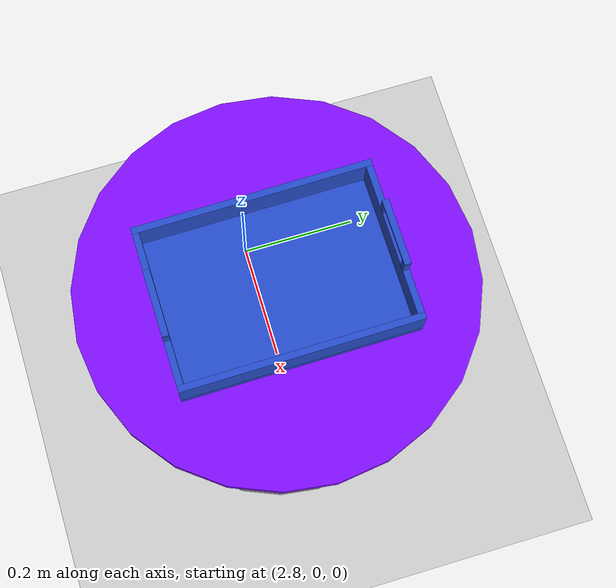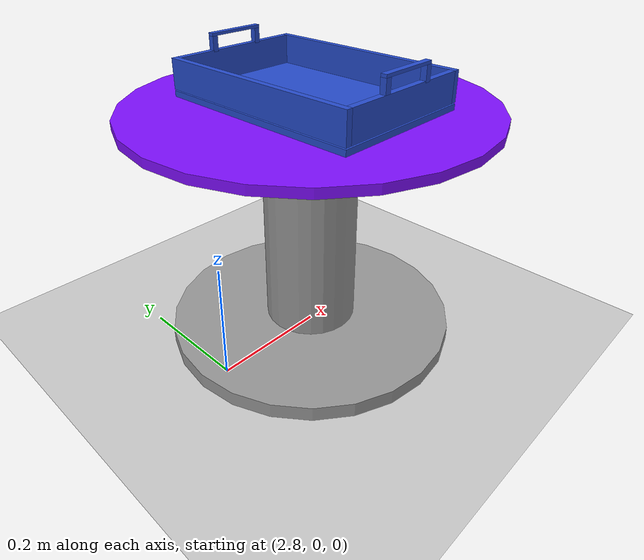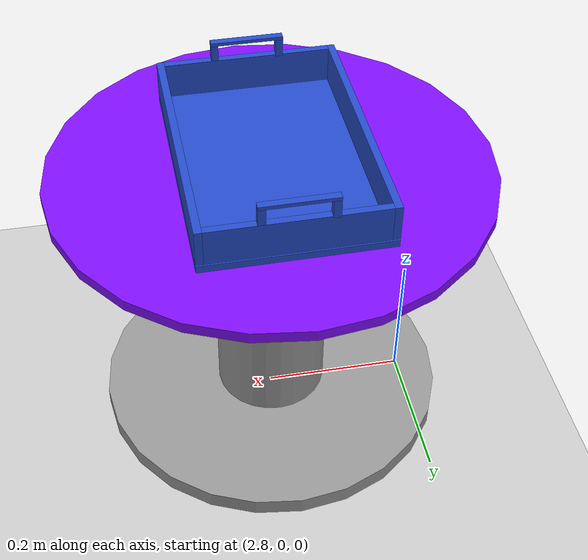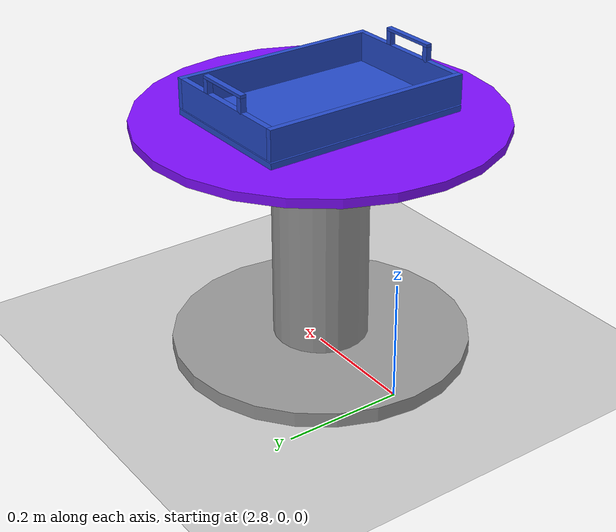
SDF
<sdf version="1.6">
 <world name="default">
  <light name="sun" type="directional">
   <pose>0 0 10 0 -0 0</pose>
   <diffuse>0.8 0.8 0.8 1</diffuse>
   <specular>0.1 0.1 0.1 1</specular>
   <attenuation>
    <range>1000</range>
    <constant>0.9</constant>
    <linear>0.01</linear>
    <quadratic>0.001</quadratic>
   </attenuation>
   <direction>-0.5 0.5 -1</direction>
  </light>
  <model name="ground_plane">
   <static>1</static>
   <link name="link">
    <collision name="collision">
     <geometry><plane><normal>0 0 1</normal><size>100 100</size></plane></geometry>
     <surface><friction><ode><mu>100</mu><mu2>50</mu2></ode></friction></surface>
    </collision>
    <visual name="visual">
     <cast_shadows>0</cast_shadows>
     <geometry><plane><normal>0 0 1</normal><size>100 100</size></plane></geometry>
     <material>
      <script><uri>file://media/materials/scripts/gazebo.material</uri><name>Gazebo/Grey</name></script>
     </material>
    </visual>
   </link>
  </model>
  <gravity>0 0 -9.8</gravity>
  <magnetic_field>6e-06 2.3e-05 -4.2e-05</magnetic_field>
  <atmosphere type="adiabatic"/>
  <physics name="default_physics" default="0" type="ode">
   <max_step_size>0.001</max_step_size>
   <real_time_factor>1</real_time_factor>
   <real_time_update_rate>1000</real_time_update_rate>
  </physics>
  <scene><ambient>0.4 0.4 0.4 1</ambient><background>0.7 0.7 0.7 1</background><shadows>1</shadows></scene>
  <spherical_coordinates>
   <surface_model>EARTH_WGS84</surface_model>
   <latitude_deg>0</latitude_deg>
   <longitude_deg>0</longitude_deg>
   <elevation>0</elevation>
   <heading_deg>0</heading_deg>
  </spherical_coordinates>
  <model name="table_round_low">
   <link name="link_0">
    <pose>0 -0 -0.258333 0 -0 0</pose>
    <inertial>
     <mass>1</mass>
     <inertia><ixx>0.145833</ixx><ixy>0</ixy><ixz>0</ixz><iyy>0.145833</iyy><iyz>0</iyz><izz>0.125</izz></inertia>
    </inertial>
    <visual name="visual">
     <geometry><cylinder><radius>0.25</radius><length>0.025</length></cylinder></geometry>
     <material>
      <lighting>1</lighting>
      <script><uri>file://media/materials/scripts/gazebo.material</uri><name>Gazebo/Grey</name></script>
      <shader type="pixel"><normal_map>__default__</normal_map></shader>
      <ambient>0.3 0.3 0.3 1</ambient>
      <diffuse>0.7 0.7 0.7 1</diffuse>
      <specular>0.01 0.01 0.01 1</specular>
      <emissive>0 0 0 1</emissive>
     </material>
    </visual>
    <collision name="collision">
     <geometry><cylinder><radius>0.25</radius><length>0.025</length></cylinder></geometry>
     <surface>
      <friction>
       <ode><mu>1</mu><mu2>1</mu2><fdir1>0 0 0</fdir1><slip1>0</slip1><slip2>0</slip2></ode>
       <torsional>
        <coefficient>1</coefficient>
        <patch_radius>0</patch_radius>
        <surface_radius>0</surface_radius>
        <use_patch_radius>1</use_patch_radius>
        <ode><slip>0</slip></ode>
       </torsional>
      </friction>
      <bounce><restitution_coefficient>0</restitution_coefficient><threshold>1e+06</threshold></bounce>
      <contact>
       <collide_without_contact>0</collide_without_contact>
       <collide_without_contact_bitmask>1</collide_without_contact_bitmask>
       <collide_bitmask>1</collide_bitmask>
       <ode>
        <soft_cfm>0</soft_cfm>
        <soft_erp>0.2</soft_erp>
        <kp>1e+13</kp>
        <kd>1</kd>
        <max_vel>0.01</max_vel>
        <min_depth>0</min_depth>
       </ode>
       <bullet>
        <split_impulse>1</split_impulse>
        <split_impulse_penetration_threshold>-0.01</split_impulse_penetration_threshold>
        <soft_cfm>0</soft_cfm>
        <soft_erp>0.2</soft_erp>
        <kp>1e+13</kp>
        <kd>1</kd>
       </bullet>
      </contact>
     </surface>
    </collision>
   </link>
   <link name="link_1">
    <pose>-0 0 -0.065014 0 -0 0</pose>
    <inertial>
     <mass>0.761996</mass>
     <inertia>
      <ixx>0.0104367</ixx>
      <ixy>0</ixy>
      <ixz>0</ixz>
      <iyy>0.0104367</iyy>
      <iyz>0</iyz>
      <izz>0.00243839</izz>
     </inertia>
    </inertial>
    <visual name="visual">
     <geometry><cylinder><radius>0.08</radius><length>0.380997</length></cylinder></geometry>
     <material>
      <lighting>1</lighting>
      <script><uri>file://media/materials/scripts/gazebo.material</uri><name>Gazebo/Grey</name></script>
      <shader type="pixel"><normal_map>__default__</normal_map></shader>
      <ambient>0.3 0.3 0.3 1</ambient>
      <diffuse>0.7 0.7 0.7 1</diffuse>
      <specular>0.01 0.01 0.01 1</specular>
      <emissive>0 0 0 1</emissive>
     </material>
    </visual>
    <collision name="collision">
     <geometry><cylinder><radius>0.08</radius><length>0.380997</length></cylinder></geometry>
     <surface>
      <friction>
       <ode><mu>1</mu><mu2>1</mu2><fdir1>0 0 0</fdir1><slip1>0</slip1><slip2>0</slip2></ode>
       <torsional>
        <coefficient>1</coefficient>
        <patch_radius>0</patch_radius>
        <surface_radius>0</surface_radius>
        <use_patch_radius>1</use_patch_radius>
        <ode><slip>0</slip></ode>
       </torsional>
      </friction>
      <bounce><restitution_coefficient>0</restitution_coefficient><threshold>1e+06</threshold></bounce>
      <contact>
       <collide_without_contact>0</collide_without_contact>
       <collide_without_contact_bitmask>1</collide_without_contact_bitmask>
       <collide_bitmask>1</collide_bitmask>
       <ode>
        <soft_cfm>0</soft_cfm>
        <soft_erp>0.2</soft_erp>
        <kp>1e+13</kp>
        <kd>1</kd>
        <max_vel>0.01</max_vel>
        <min_depth>0</min_depth>
       </ode>
       <bullet>
        <split_impulse>1</split_impulse>
        <split_impulse_penetration_threshold>-0.01</split_impulse_penetration_threshold>
        <soft_cfm>0</soft_cfm>
        <soft_erp>0.2</soft_erp>
        <kp>1e+13</kp>
        <kd>1</kd>
       </bullet>
      </contact>
     </surface>
    </collision>
   </link>
   <link name="link_2">
    <pose>-0 0 0.14037 0 -0 0</pose>
    <inertial>
     <mass>1</mass>
     <inertia><ixx>0.145833</ixx><ixy>0</ixy><ixz>0</ixz><iyy>0.145833</iyy><iyz>0</iyz><izz>0.125</izz></inertia>
    </inertial>
    <visual name="visual">
     <geometry><cylinder><radius>0.3</radius><length>0.015</length></cylinder></geometry>
     <material>
      <lighting>1</lighting>
      <script><uri>file://media/materials/scripts/gazebo.material</uri><name>Gazebo/Grey</name></script>
      <shader type="pixel"><normal_map>__default__</normal_map></shader>
      <ambient>1 1 1 1</ambient>
      <diffuse>0.5 0.054 1 1</diffuse>
      <specular>0.01 0 0.01 1</specular>
      <emissive>0.7 0.6 0.1 1</emissive>
     </material>
    </visual>
    <collision name="collision">
     <geometry><cylinder><radius>0.3</radius><length>0.015</length></cylinder></geometry>
     <surface>
      <friction>
       <ode><mu>1</mu><mu2>1</mu2><fdir1>0 0 0</fdir1><slip1>0</slip1><slip2>0</slip2></ode>
       <torsional>
        <coefficient>1</coefficient>
        <patch_radius>0</patch_radius>
        <surface_radius>0</surface_radius>
        <use_patch_radius>1</use_patch_radius>
        <ode><slip>0</slip></ode>
       </torsional>
      </friction>
      <bounce><restitution_coefficient>0</restitution_coefficient><threshold>1e+06</threshold></bounce>
      <contact>
       <collide_without_contact>0</collide_without_contact>
       <collide_without_contact_bitmask>1</collide_without_contact_bitmask>
       <collide_bitmask>1</collide_bitmask>
       <ode>
        <soft_cfm>0</soft_cfm>
        <soft_erp>0.2</soft_erp>
        <kp>1e+13</kp>
        <kd>1</kd>
        <max_vel>0.01</max_vel>
        <min_depth>0</min_depth>
       </ode>
       <bullet>
        <split_impulse>1</split_impulse>
        <split_impulse_penetration_threshold>-0.01</split_impulse_penetration_threshold>
        <soft_cfm>0</soft_cfm>
        <soft_erp>0.2</soft_erp>
        <kp>1e+13</kp>
        <kd>1</kd>
       </bullet>
      </contact>
     </surface>
    </collision>
   </link>
   <joint name="link_0_JOINT_0" type="fixed">
    <parent>link_0</parent>
    <child>link_1</child>
    <physics>
     <ode><limit><cfm>0</cfm><erp>0.2</erp></limit><suspension><cfm>0</cfm><erp>0.2</erp></suspension></ode>
    </physics>
   </joint>
   <joint name="link_1_JOINT_1" type="fixed">
    <parent>link_1</parent>
    <child>link_2</child>
    <physics>
     <ode><limit><cfm>0</cfm><erp>0.2</erp></limit><suspension><cfm>0</cfm><erp>0.2</erp></suspension></ode>
    </physics>
   </joint>
   <static>0</static>
   <pose>3.00002 -2.6e-05 0.270833 -1e-06 -0 1e-05</pose>
  </model>
  <model name="tray2">
   <link name="link_0">
    <pose>-0 -0 -0.051818 0 -0 0</pose>
    <inertial>
     <mass>0.1</mass>
     <inertia>
      <ixx>0.00075</ixx>
      <ixy>0</ixy>
      <ixz>0</ixz>
      <iyy>0.000333</iyy>
      <iyz>0</iyz>
      <izz>0.001083</izz>
     </inertia>
    </inertial>
    <visual name="visual">
     <geometry><box><size>0.36 0.25 0.01</size></box></geometry>
     <material>
      <lighting>1</lighting>
      <script><uri>file://media/materials/scripts/gazebo.material</uri><name>Gazebo/Blue</name></script>
      <shader type="pixel"><normal_map>__default__</normal_map></shader>
      <ambient>0 0 0.3 1</ambient>
      <diffuse>0 0 0.7 1</diffuse>
      <specular>0 0 0.3 1</specular>
      <emissive>0 0 0.2 1</emissive>
     </material>
    </visual>
    <collision name="collision">
     <geometry><box><size>0.36 0.25 0.01</size></box></geometry>
     <surface>
      <friction>
       <ode><mu>1</mu><mu2>1</mu2><fdir1>0 0 0</fdir1><slip1>0</slip1><slip2>0</slip2></ode>
       <torsional>
        <coefficient>1</coefficient>
        <patch_radius>0</patch_radius>
        <surface_radius>0</surface_radius>
        <use_patch_radius>1</use_patch_radius>
        <ode><slip>0</slip></ode>
       </torsional>
      </friction>
      <bounce><restitution_coefficient>0</restitution_coefficient><threshold>1e+06</threshold></bounce>
      <contact>
       <collide_without_contact>0</collide_without_contact>
       <collide_without_contact_bitmask>1</collide_without_contact_bitmask>
       <collide_bitmask>1</collide_bitmask>
       <ode>
        <soft_cfm>0</soft_cfm>
        <soft_erp>0.2</soft_erp>
        <kp>1e+13</kp>
        <kd>1</kd>
        <max_vel>0.01</max_vel>
        <min_depth>0</min_depth>
       </ode>
       <bullet>
        <split_impulse>1</split_impulse>
        <split_impulse_penetration_threshold>-0.01</split_impulse_penetration_threshold>
        <soft_cfm>0</soft_cfm>
        <soft_erp>0.2</soft_erp>
        <kp>1e+13</kp>
        <kd>1</kd>
       </bullet>
      </contact>
     </surface>
    </collision>
   </link>
   <link name="link_1">
    <pose>-0 -0.12 -0.02 1.5708 -0 0</pose>
    <inertial>
     <mass>0.025</mass>
     <inertia>
      <ixx>0.000188</ixx>
      <ixy>5e-06</ixy>
      <ixz>0</ixz>
      <iyy>0.166667</iyy>
      <iyz>0</iyz>
      <izz>0.000193</izz>
     </inertia>
    </inertial>
    <visual name="visual">
     <geometry><box><size>0.36 0.05 0.01</size></box></geometry>
     <material>
      <lighting>1</lighting>
      <script><uri>file://media/materials/scripts/gazebo.material</uri><name>Gazebo/Blue</name></script>
      <shader type="pixel"><normal_map>__default__</normal_map></shader>
      <ambient>0 0 0.3 1</ambient>
      <diffuse>0 0 0.7 1</diffuse>
      <specular>0 0 0.3 1</specular>
      <emissive>0 0 0.2 1</emissive>
     </material>
    </visual>
    <collision name="collision">
     <geometry><box><size>0.36 0.05 0.01</size></box></geometry>
     <surface>
      <friction>
       <ode><mu>1</mu><mu2>1</mu2><fdir1>0 0 0</fdir1><slip1>0</slip1><slip2>0</slip2></ode>
       <torsional>
        <coefficient>1</coefficient>
        <patch_radius>0</patch_radius>
        <surface_radius>0</surface_radius>
        <use_patch_radius>1</use_patch_radius>
        <ode><slip>0</slip></ode>
       </torsional>
      </friction>
      <bounce><restitution_coefficient>0</restitution_coefficient><threshold>1e+06</threshold></bounce>
      <contact>
       <collide_without_contact>0</collide_without_contact>
       <collide_without_contact_bitmask>1</collide_without_contact_bitmask>
       <collide_bitmask>1</collide_bitmask>
       <ode>
        <soft_cfm>0</soft_cfm>
        <soft_erp>0.2</soft_erp>
        <kp>1e+13</kp>
        <kd>1</kd>
        <max_vel>0.01</max_vel>
        <min_depth>0</min_depth>
       </ode>
       <bullet>
        <split_impulse>1</split_impulse>
        <split_impulse_penetration_threshold>-0.01</split_impulse_penetration_threshold>
        <soft_cfm>0</soft_cfm>
        <soft_erp>0.2</soft_erp>
        <kp>1e+13</kp>
        <kd>1</kd>
       </bullet>
      </contact>
     </surface>
    </collision>
   </link>
   <link name="link_1_clone">
    <pose>0 0.12 -0.02 1.5708 -0 0</pose>
    <inertial>
     <mass>0.025</mass>
     <inertia>
      <ixx>0.000188</ixx>
      <ixy>5e-06</ixy>
      <ixz>0</ixz>
      <iyy>0.166667</iyy>
      <iyz>0</iyz>
      <izz>0.000193</izz>
     </inertia>
    </inertial>
    <visual name="visual">
     <geometry><box><size>0.36 0.05 0.01</size></box></geometry>
     <material>
      <lighting>1</lighting>
      <script><uri>file://media/materials/scripts/gazebo.material</uri><name>Gazebo/Blue</name></script>
      <shader type="pixel"><normal_map>__default__</normal_map></shader>
      <ambient>0 0 0.3 1</ambient>
      <diffuse>0 0 0.7 1</diffuse>
      <specular>0 0 0.3 1</specular>
      <emissive>0 0 0.2 1</emissive>
     </material>
    </visual>
    <collision name="collision">
     <geometry><box><size>0.36 0.05 0.01</size></box></geometry>
     <surface>
      <friction>
       <ode><mu>1</mu><mu2>1</mu2><fdir1>0 0 0</fdir1><slip1>0</slip1><slip2>0</slip2></ode>
       <torsional>
        <coefficient>1</coefficient>
        <patch_radius>0</patch_radius>
        <surface_radius>0</surface_radius>
        <use_patch_radius>1</use_patch_radius>
        <ode><slip>0</slip></ode>
       </torsional>
      </friction>
      <bounce><restitution_coefficient>0</restitution_coefficient><threshold>1e+06</threshold></bounce>
      <contact>
       <collide_without_contact>0</collide_without_contact>
       <collide_without_contact_bitmask>1</collide_without_contact_bitmask>
       <collide_bitmask>1</collide_bitmask>
       <ode>
        <soft_cfm>0</soft_cfm>
        <soft_erp>0.2</soft_erp>
        <kp>1e+13</kp>
        <kd>1</kd>
        <max_vel>0.01</max_vel>
        <min_depth>0</min_depth>
       </ode>
       <bullet>
        <split_impulse>1</split_impulse>
        <split_impulse_penetration_threshold>-0.01</split_impulse_penetration_threshold>
        <soft_cfm>0</soft_cfm>
        <soft_erp>0.2</soft_erp>
        <kp>1e+13</kp>
        <kd>1</kd>
       </bullet>
      </contact>
     </surface>
    </collision>
   </link>
   <link name="link_2">
    <pose>-0.175 -0 -0.02 1.5708 -0 1.5708</pose>
    <inertial>
     <mass>0.02</mass>
     <inertia><ixx>5.4e-05</ixx><ixy>0</ixy><ixz>0</ixz><iyy>4e-06</iyy><iyz>0</iyz><izz>5.8e-05</izz></inertia>
    </inertial>
    <visual name="visual">
     <geometry><box><size>0.23 0.05 0.01</size></box></geometry>
     <material>
      <lighting>1</lighting>
      <script><uri>file://media/materials/scripts/gazebo.material</uri><name>Gazebo/Blue</name></script>
      <shader type="pixel"><normal_map>__default__</normal_map></shader>
      <ambient>0 0 0.3 1</ambient>
      <diffuse>0 0 0.7 1</diffuse>
      <specular>0 0 0.3 1</specular>
      <emissive>0 0 0.3 1</emissive>
     </material>
    </visual>
    <collision name="collision">
     <geometry><box><size>0.23 0.05 0.01</size></box></geometry>
     <surface>
      <friction>
       <ode><mu>1</mu><mu2>1</mu2><fdir1>0 0 0</fdir1><slip1>0</slip1><slip2>0</slip2></ode>
       <torsional>
        <coefficient>1</coefficient>
        <patch_radius>0</patch_radius>
        <surface_radius>0</surface_radius>
        <use_patch_radius>1</use_patch_radius>
        <ode><slip>0</slip></ode>
       </torsional>
      </friction>
      <bounce><restitution_coefficient>0</restitution_coefficient><threshold>1e+06</threshold></bounce>
      <contact>
       <collide_without_contact>0</collide_without_contact>
       <collide_without_contact_bitmask>1</collide_without_contact_bitmask>
       <collide_bitmask>1</collide_bitmask>
       <ode>
        <soft_cfm>0</soft_cfm>
        <soft_erp>0.2</soft_erp>
        <kp>1e+13</kp>
        <kd>1</kd>
        <max_vel>0.01</max_vel>
        <min_depth>0</min_depth>
       </ode>
       <bullet>
        <split_impulse>1</split_impulse>
        <split_impulse_penetration_threshold>-0.01</split_impulse_penetration_threshold>
        <soft_cfm>0</soft_cfm>
        <soft_erp>0.2</soft_erp>
        <kp>1e+13</kp>
        <kd>1</kd>
       </bullet>
      </contact>
     </surface>
    </collision>
   </link>
   <link name="link_2_clone">
    <pose>0.175 -0 -0.02 1.5708 -0 1.5708</pose>
    <inertial>
     <mass>0.02</mass>
     <inertia><ixx>5.4e-05</ixx><ixy>0</ixy><ixz>0</ixz><iyy>4e-06</iyy><iyz>0</iyz><izz>5.8e-05</izz></inertia>
    </inertial>
    <visual name="visual">
     <geometry><box><size>0.23 0.05 0.01</size></box></geometry>
     <material>
      <lighting>1</lighting>
      <script><uri>file://media/materials/scripts/gazebo.material</uri><name>Gazebo/Blue</name></script>
      <shader type="pixel"><normal_map>__default__</normal_map></shader>
      <ambient>0 0 0.3 1</ambient>
      <diffuse>0 0 0.7 1</diffuse>
      <specular>0 0 0.3 1</specular>
      <emissive>0 0 0.3 1</emissive>
     </material>
    </visual>
    <collision name="collision">
     <geometry><box><size>0.23 0.05 0.01</size></box></geometry>
     <surface>
      <friction>
       <ode><mu>1</mu><mu2>1</mu2><fdir1>0 0 0</fdir1><slip1>0</slip1><slip2>0</slip2></ode>
       <torsional>
        <coefficient>1</coefficient>
        <patch_radius>0</patch_radius>
        <surface_radius>0</surface_radius>
        <use_patch_radius>1</use_patch_radius>
        <ode><slip>0</slip></ode>
       </torsional>
      </friction>
      <bounce><restitution_coefficient>0</restitution_coefficient><threshold>1e+06</threshold></bounce>
      <contact>
       <collide_without_contact>0</collide_without_contact>
       <collide_without_contact_bitmask>1</collide_without_contact_bitmask>
       <collide_bitmask>1</collide_bitmask>
       <ode>
        <soft_cfm>0</soft_cfm>
        <soft_erp>0.2</soft_erp>
        <kp>1e+13</kp>
        <kd>1</kd>
        <max_vel>0.01</max_vel>
        <min_depth>0</min_depth>
       </ode>
       <bullet>
        <split_impulse>1</split_impulse>
        <split_impulse_penetration_threshold>-0.01</split_impulse_penetration_threshold>
        <soft_cfm>0</soft_cfm>
        <soft_erp>0.2</soft_erp>
        <kp>1e+13</kp>
        <kd>1</kd>
       </bullet>
      </contact>
     </surface>
    </collision>
   </link>
   <link name="link_3">
    <pose>-0.175 0 0.03 0 -0 1.5708</pose>
    <inertial>
     <mass>0.01</mass>
     <inertia><ixx>5e-06</ixx><ixy>0</ixy><ixz>0</ixz><iyy>0</iyy><iyz>0</iyz><izz>5e-06</izz></inertia>
    </inertial>
    <visual name="visual">
     <geometry><box><size>0.1 0.01 0.005</size></box></geometry>
     <material>
      <lighting>1</lighting>
      <script><uri>file://media/materials/scripts/gazebo.material</uri><name>Gazebo/Blue</name></script>
      <shader type="pixel"><normal_map>__default__</normal_map></shader>
      <ambient>0 0 0.3 1</ambient>
      <diffuse>0 0 0.7 1</diffuse>
      <specular>0 0 0.3 1</specular>
      <emissive>0 0 0.3 1</emissive>
     </material>
    </visual>
    <collision name="collision">
     <geometry><box><size>0.1 0.01 0.005</size></box></geometry>
     <surface>
      <friction>
       <ode><mu>1</mu><mu2>1</mu2><fdir1>0 0 0</fdir1><slip1>0</slip1><slip2>0</slip2></ode>
       <torsional>
        <coefficient>1</coefficient>
        <patch_radius>0</patch_radius>
        <surface_radius>0</surface_radius>
        <use_patch_radius>1</use_patch_radius>
        <ode><slip>0</slip></ode>
       </torsional>
      </friction>
      <bounce><restitution_coefficient>0</restitution_coefficient><threshold>1e+06</threshold></bounce>
      <contact>
       <collide_without_contact>0</collide_without_contact>
       <collide_without_contact_bitmask>1</collide_without_contact_bitmask>
       <collide_bitmask>1</collide_bitmask>
       <ode>
        <soft_cfm>0</soft_cfm>
        <soft_erp>0.2</soft_erp>
        <kp>1e+13</kp>
        <kd>1</kd>
        <max_vel>0.01</max_vel>
        <min_depth>0</min_depth>
       </ode>
       <bullet>
        <split_impulse>1</split_impulse>
        <split_impulse_penetration_threshold>-0.01</split_impulse_penetration_threshold>
        <soft_cfm>0</soft_cfm>
        <soft_erp>0.2</soft_erp>
        <kp>1e+13</kp>
        <kd>1</kd>
       </bullet>
      </contact>
     </surface>
    </collision>
   </link>
   <link name="link_3_clone">
    <pose>0.175 0 0.03 0 -0 1.5708</pose>
    <inertial>
     <mass>0.01</mass>
     <inertia><ixx>5e-06</ixx><ixy>0</ixy><ixz>0</ixz><iyy>0</iyy><iyz>0</iyz><izz>5e-06</izz></inertia>
    </inertial>
    <visual name="visual">
     <geometry><box><size>0.1 0.01 0.005</size></box></geometry>
     <material>
      <lighting>1</lighting>
      <script><uri>file://media/materials/scripts/gazebo.material</uri><name>Gazebo/Blue</name></script>
      <shader type="pixel"><normal_map>__default__</normal_map></shader>
      <ambient>0 0 0.3 1</ambient>
      <diffuse>0 0 0.7 1</diffuse>
      <specular>0 0 0.3 1</specular>
      <emissive>0 0 0.2 1</emissive>
     </material>
    </visual>
    <collision name="collision">
     <geometry><box><size>0.1 0.01 0.005</size></box></geometry>
     <surface>
      <friction>
       <ode><mu>1</mu><mu2>1</mu2><fdir1>0 0 0</fdir1><slip1>0</slip1><slip2>0</slip2></ode>
       <torsional>
        <coefficient>1</coefficient>
        <patch_radius>0</patch_radius>
        <surface_radius>0</surface_radius>
        <use_patch_radius>1</use_patch_radius>
        <ode><slip>0</slip></ode>
       </torsional>
      </friction>
      <bounce><restitution_coefficient>0</restitution_coefficient><threshold>1e+06</threshold></bounce>
      <contact>
       <collide_without_contact>0</collide_without_contact>
       <collide_without_contact_bitmask>1</collide_without_contact_bitmask>
       <collide_bitmask>1</collide_bitmask>
       <ode>
        <soft_cfm>0</soft_cfm>
        <soft_erp>0.2</soft_erp>
        <kp>1e+13</kp>
        <kd>1</kd>
        <max_vel>0.01</max_vel>
        <min_depth>0</min_depth>
       </ode>
       <bullet>
        <split_impulse>1</split_impulse>
        <split_impulse_penetration_threshold>-0.01</split_impulse_penetration_threshold>
        <soft_cfm>0</soft_cfm>
        <soft_erp>0.2</soft_erp>
        <kp>1e+13</kp>
        <kd>1</kd>
       </bullet>
      </contact>
     </surface>
    </collision>
   </link>
   <link name="link_4">
    <pose>-0.175 -0.045 0.015 -3.14127 1.57079 -3.14127</pose>
    <inertial>
     <mass>0.01</mass>
     <inertia><ixx>1e-06</ixx><ixy>0</ixy><ixz>0</ixz><iyy>0</iyy><iyz>1e-06</iyz><izz>0.166667</izz></inertia>
    </inertial>
    <visual name="visual">
     <geometry><box><size>0.025 0.01 0.01</size></box></geometry>
     <material>
      <lighting>1</lighting>
      <script><uri>file://media/materials/scripts/gazebo.material</uri><name>Gazebo/Blue</name></script>
      <shader type="pixel"><normal_map>__default__</normal_map></shader>
      <ambient>0 0 0.3 1</ambient>
      <diffuse>0 0 0.7 1</diffuse>
      <specular>0 0 0.01 1</specular>
      <emissive>0 0 0 1</emissive>
     </material>
    </visual>
    <collision name="collision">
     <geometry><box><size>0.025 0.01 0.01</size></box></geometry>
     <surface>
      <friction>
       <ode><mu>1</mu><mu2>1</mu2><fdir1>0 0 0</fdir1><slip1>0</slip1><slip2>0</slip2></ode>
       <torsional>
        <coefficient>1</coefficient>
        <patch_radius>0</patch_radius>
        <surface_radius>0</surface_radius>
        <use_patch_radius>1</use_patch_radius>
        <ode><slip>0</slip></ode>
       </torsional>
      </friction>
      <bounce><restitution_coefficient>0</restitution_coefficient><threshold>1e+06</threshold></bounce>
      <contact>
       <collide_without_contact>0</collide_without_contact>
       <collide_without_contact_bitmask>1</collide_without_contact_bitmask>
       <collide_bitmask>1</collide_bitmask>
       <ode>
        <soft_cfm>0</soft_cfm>
        <soft_erp>0.2</soft_erp>
        <kp>1e+13</kp>
        <kd>1</kd>
        <max_vel>0.01</max_vel>
        <min_depth>0</min_depth>
       </ode>
       <bullet>
        <split_impulse>1</split_impulse>
        <split_impulse_penetration_threshold>-0.01</split_impulse_penetration_threshold>
        <soft_cfm>0</soft_cfm>
        <soft_erp>0.2</soft_erp>
        <kp>1e+13</kp>
        <kd>1</kd>
       </bullet>
      </contact>
     </surface>
    </collision>
   </link>
   <link name="link_4_clone">
    <pose>-0.175 0.045 0.015 -3.14127 1.57079 -3.14127</pose>
    <inertial>
     <mass>0.01</mass>
     <inertia><ixx>1e-06</ixx><ixy>0</ixy><ixz>0</ixz><iyy>0</iyy><iyz>1e-06</iyz><izz>0.166667</izz></inertia>
    </inertial>
    <visual name="visual">
     <geometry><box><size>0.025 0.01 0.01</size></box></geometry>
     <material>
      <lighting>1</lighting>
      <script><uri>file://media/materials/scripts/gazebo.material</uri><name>Gazebo/Blue</name></script>
      <shader type="pixel"><normal_map>__default__</normal_map></shader>
      <ambient>0 0 0.3 1</ambient>
      <diffuse>0 0 0.7 1</diffuse>
      <specular>0 0 0.01 1</specular>
      <emissive>0 0 0 1</emissive>
     </material>
    </visual>
    <collision name="collision">
     <geometry><box><size>0.025 0.01 0.01</size></box></geometry>
     <surface>
      <friction>
       <ode><mu>1</mu><mu2>1</mu2><fdir1>0 0 0</fdir1><slip1>0</slip1><slip2>0</slip2></ode>
       <torsional>
        <coefficient>1</coefficient>
        <patch_radius>0</patch_radius>
        <surface_radius>0</surface_radius>
        <use_patch_radius>1</use_patch_radius>
        <ode><slip>0</slip></ode>
       </torsional>
      </friction>
      <bounce><restitution_coefficient>0</restitution_coefficient><threshold>1e+06</threshold></bounce>
      <contact>
       <collide_without_contact>0</collide_without_contact>
       <collide_without_contact_bitmask>1</collide_without_contact_bitmask>
       <collide_bitmask>1</collide_bitmask>
       <ode>
        <soft_cfm>0</soft_cfm>
        <soft_erp>0.2</soft_erp>
        <kp>1e+13</kp>
        <kd>1</kd>
        <max_vel>0.01</max_vel>
        <min_depth>0</min_depth>
       </ode>
       <bullet>
        <split_impulse>1</split_impulse>
        <split_impulse_penetration_threshold>-0.01</split_impulse_penetration_threshold>
        <soft_cfm>0</soft_cfm>
        <soft_erp>0.2</soft_erp>
        <kp>1e+13</kp>
        <kd>1</kd>
       </bullet>
      </contact>
     </surface>
    </collision>
   </link>
   <link name="link_4_clone_0">
    <pose>0.175 -0.045 0.015 -3.14127 1.57079 -3.14127</pose>
    <inertial>
     <mass>0.01</mass>
     <inertia><ixx>1e-06</ixx><ixy>0</ixy><ixz>0</ixz><iyy>0</iyy><iyz>1e-06</iyz><izz>0.166667</izz></inertia>
    </inertial>
    <visual name="visual">
     <geometry><box><size>0.025 0.01 0.01</size></box></geometry>
     <material>
      <lighting>1</lighting>
      <script><uri>file://media/materials/scripts/gazebo.material</uri><name>Gazebo/Blue</name></script>
      <shader type="pixel"><normal_map>__default__</normal_map></shader>
      <ambient>0 0 0.3 1</ambient>
      <diffuse>0 0 0.7 1</diffuse>
      <specular>0 0 0.01 1</specular>
      <emissive>0 0 0 1</emissive>
     </material>
    </visual>
    <collision name="collision">
     <geometry><box><size>0.025 0.01 0.01</size></box></geometry>
     <surface>
      <friction>
       <ode><mu>1</mu><mu2>1</mu2><fdir1>0 0 0</fdir1><slip1>0</slip1><slip2>0</slip2></ode>
       <torsional>
        <coefficient>1</coefficient>
        <patch_radius>0</patch_radius>
        <surface_radius>0</surface_radius>
        <use_patch_radius>1</use_patch_radius>
        <ode><slip>0</slip></ode>
       </torsional>
      </friction>
      <bounce><restitution_coefficient>0</restitution_coefficient><threshold>1e+06</threshold></bounce>
      <contact>
       <collide_without_contact>0</collide_without_contact>
       <collide_without_contact_bitmask>1</collide_without_contact_bitmask>
       <collide_bitmask>1</collide_bitmask>
       <ode>
        <soft_cfm>0</soft_cfm>
        <soft_erp>0.2</soft_erp>
        <kp>1e+13</kp>
        <kd>1</kd>
        <max_vel>0.01</max_vel>
        <min_depth>0</min_depth>
       </ode>
       <bullet>
        <split_impulse>1</split_impulse>
        <split_impulse_penetration_threshold>-0.01</split_impulse_penetration_threshold>
        <soft_cfm>0</soft_cfm>
        <soft_erp>0.2</soft_erp>
        <kp>1e+13</kp>
        <kd>1</kd>
       </bullet>
      </contact>
     </surface>
    </collision>
   </link>
   <link name="link_4_clone_1">
    <pose>0.175 0.045 0.015 -3.14127 1.57079 -3.14127</pose>
    <inertial>
     <mass>0.01</mass>
     <inertia><ixx>1e-06</ixx><ixy>0</ixy><ixz>0</ixz><iyy>0</iyy><iyz>1e-06</iyz><izz>0.166667</izz></inertia>
    </inertial>
    <visual name="visual">
     <geometry><box><size>0.025 0.01 0.01</size></box></geometry>
     <material>
      <lighting>1</lighting>
      <script><uri>file://media/materials/scripts/gazebo.material</uri><name>Gazebo/Blue</name></script>
      <shader type="pixel"><normal_map>__default__</normal_map></shader>
      <ambient>0 0 0.3 1</ambient>
      <diffuse>0 0 0.7 1</diffuse>
      <specular>0 0 0.01 1</specular>
      <emissive>0 0 0 1</emissive>
     </material>
    </visual>
    <collision name="collision">
     <geometry><box><size>0.025 0.01 0.01</size></box></geometry>
     <surface>
      <friction>
       <ode><mu>1</mu><mu2>1</mu2><fdir1>0 0 0</fdir1><slip1>0</slip1><slip2>0</slip2></ode>
       <torsional>
        <coefficient>1</coefficient>
        <patch_radius>0</patch_radius>
        <surface_radius>0</surface_radius>
        <use_patch_radius>1</use_patch_radius>
        <ode><slip>0</slip></ode>
       </torsional>
      </friction>
      <bounce><restitution_coefficient>0</restitution_coefficient><threshold>1e+06</threshold></bounce>
      <contact>
       <collide_without_contact>0</collide_without_contact>
       <collide_without_contact_bitmask>1</collide_without_contact_bitmask>
       <collide_bitmask>1</collide_bitmask>
       <ode>
        <soft_cfm>0</soft_cfm>
        <soft_erp>0.2</soft_erp>
        <kp>1e+13</kp>
        <kd>1</kd>
        <max_vel>0.01</max_vel>
        <min_depth>0</min_depth>
       </ode>
       <bullet>
        <split_impulse>1</split_impulse>
        <split_impulse_penetration_threshold>-0.01</split_impulse_penetration_threshold>
        <soft_cfm>0</soft_cfm>
        <soft_erp>0.2</soft_erp>
        <kp>1e+13</kp>
        <kd>1</kd>
       </bullet>
      </contact>
     </surface>
    </collision>
   </link>
   <joint name="link_0_JOINT_0" type="fixed">
    <parent>link_0</parent>
    <child>link_1</child>
    <physics>
     <ode><limit><cfm>0</cfm><erp>0.2</erp></limit><suspension><cfm>0</cfm><erp>0.2</erp></suspension></ode>
    </physics>
   </joint>
   <joint name="link_0_JOINT_1" type="fixed">
    <parent>link_0</parent>
    <child>link_1_clone</child>
    <physics>
     <ode><limit><cfm>0</cfm><erp>0.2</erp></limit><suspension><cfm>0</cfm><erp>0.2</erp></suspension></ode>
    </physics>
   </joint>
   <joint name="link_0_JOINT_2" type="fixed">
    <parent>link_0</parent>
    <child>link_2</child>
    <physics>
     <ode><limit><cfm>0</cfm><erp>0.2</erp></limit><suspension><cfm>0</cfm><erp>0.2</erp></suspension></ode>
    </physics>
   </joint>
   <joint name="link_0_JOINT_3" type="fixed">
    <parent>link_0</parent>
    <child>link_2_clone</child>
    <physics>
     <ode><limit><cfm>0</cfm><erp>0.2</erp></limit><suspension><cfm>0</cfm><erp>0.2</erp></suspension></ode>
    </physics>
   </joint>
   <joint name="link_0_JOINT_4" type="fixed">
    <parent>link_0</parent>
    <child>link_4</child>
    <physics>
     <ode><limit><cfm>0</cfm><erp>0.2</erp></limit><suspension><cfm>0</cfm><erp>0.2</erp></suspension></ode>
    </physics>
   </joint>
   <joint name="link_0_JOINT_5" type="fixed">
    <parent>link_0</parent>
    <child>link_4_clone</child>
    <physics>
     <ode><limit><cfm>0</cfm><erp>0.2</erp></limit><suspension><cfm>0</cfm><erp>0.2</erp></suspension></ode>
    </physics>
   </joint>
   <joint name="link_0_JOINT_8" type="fixed">
    <parent>link_0</parent>
    <child>link_4_clone_0</child>
    <physics>
     <ode><limit><cfm>0</cfm><erp>0.2</erp></limit><suspension><cfm>0</cfm><erp>0.2</erp></suspension></ode>
    </physics>
   </joint>
   <joint name="link_0_JOINT_9" type="fixed">
    <parent>link_0</parent>
    <child>link_4_clone_1</child>
    <physics>
     <ode><limit><cfm>0</cfm><erp>0.2</erp></limit><suspension><cfm>0</cfm><erp>0.2</erp></suspension></ode>
    </physics>
   </joint>
   <joint name="link_4_JOINT_6" type="fixed">
    <parent>link_4</parent>
    <child>link_3</child>
    <physics>
     <ode><limit><cfm>0</cfm><erp>0.2</erp></limit><suspension><cfm>0</cfm><erp>0.2</erp></suspension></ode>
    </physics>
   </joint>
   <joint name="link_4_clone_0_JOINT_10" type="fixed">
    <parent>link_4_clone_0</parent>
    <child>link_3_clone</child>
    <physics>
     <ode><limit><cfm>0</cfm><erp>0.2</erp></limit><suspension><cfm>0</cfm><erp>0.2</erp></suspension></ode>
    </physics>
   </joint>
   <joint name="link_4_clone_1_JOINT_11" type="fixed">
    <parent>link_4_clone_1</parent>
    <child>link_3</child>
    <physics>
     <ode><limit><cfm>0</cfm><erp>0.2</erp></limit><suspension><cfm>0</cfm><erp>0.2</erp></suspension></ode>
    </physics>
   </joint>
   <joint name="link_4_clone_JOINT_7" type="fixed">
    <parent>link_4_clone</parent>
    <child>link_3</child>
    <physics>
     <ode><limit><cfm>0</cfm><erp>0.2</erp></limit><suspension><cfm>0</cfm><erp>0.2</erp></suspension></ode>
    </physics>
   </joint>
   <static>0</static>
   <pose>3.00009 0.000118 0.475523 -3e-06 1e-05 1.58039</pose>
  </model>
 </world>
</sdf>
